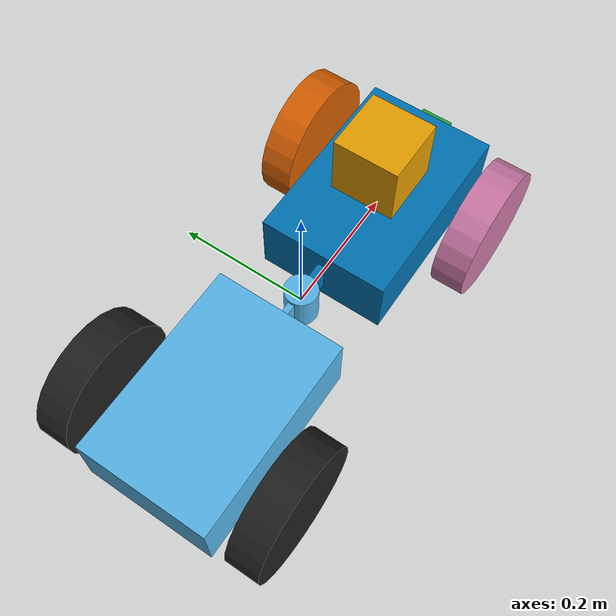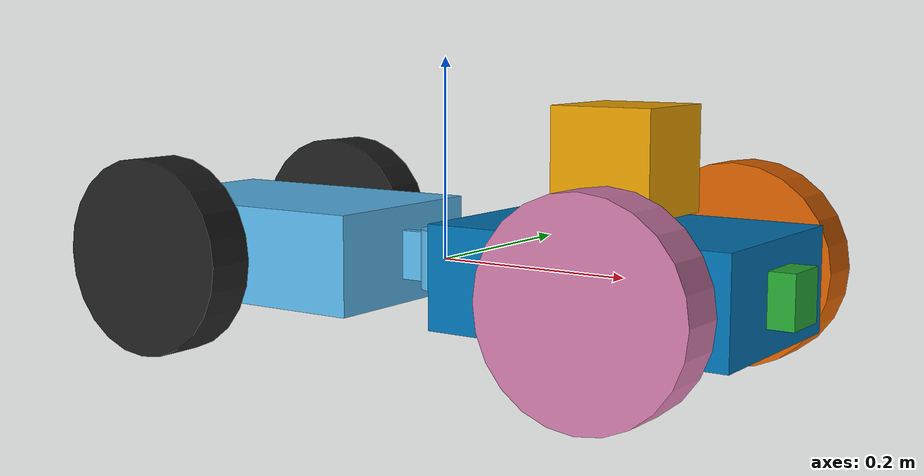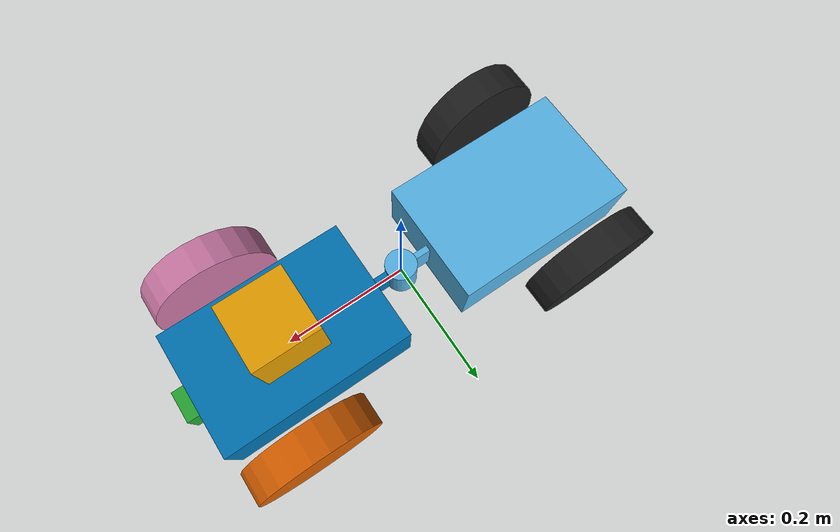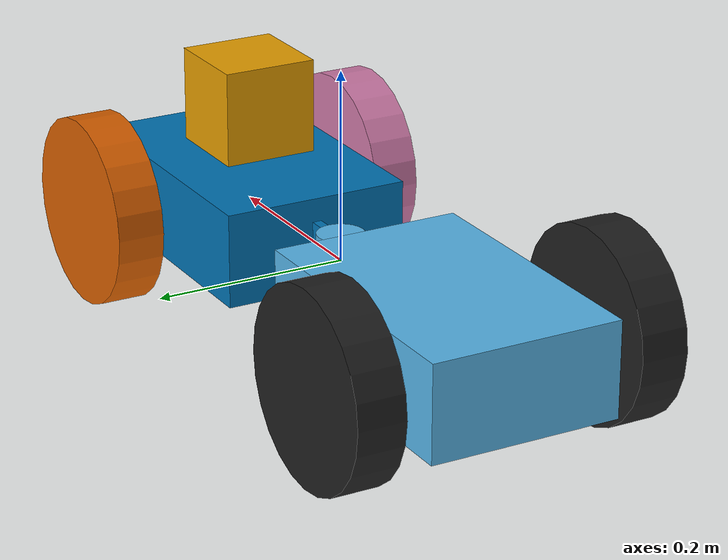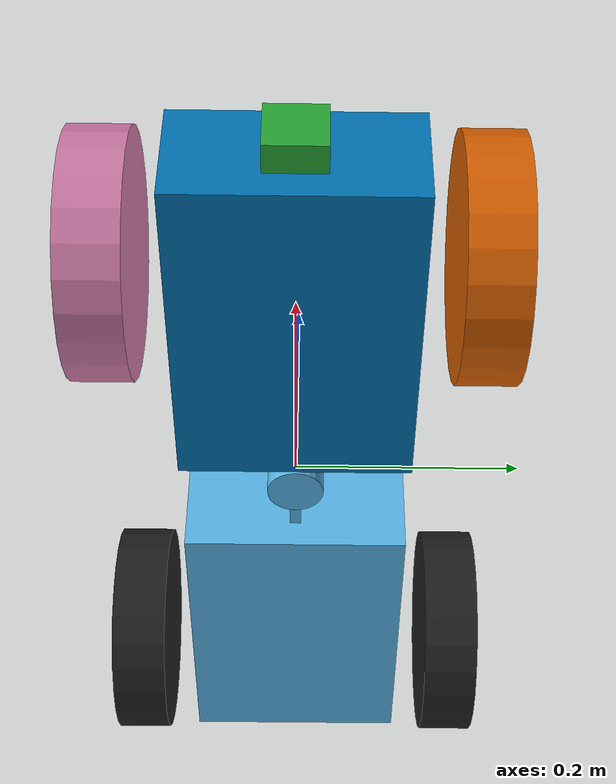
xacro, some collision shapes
<?xml version='1.0'?>

<robot name="udacity_bot" xmlns:xacro="http://www.ros.org/wiki/xacro">

  <xacro:include filename="$(find udacity_bot)/urdf/udacity_bot.gazebo" />

  <xacro:property name="wheel_length" value="0.05" />
  <xacro:property name="wheel_radius" value="0.1" />
  <xacro:property name="wheel_mass" value="5" />
  <xacro:property name="wheel_inertia" value="0.1" />

  <xacro:property name="chassis_width" value="0.2" />
  <xacro:property name="chassis_length" value="0.3" />
  <xacro:property name="chassis_depth" value="0.1" />
  <xacro:property name="chassis_mass" value="15" />
  <xacro:property name="chassis_inertia" value="0.1" />

  <xacro:property name="chassis_x_offset" value="${chassis_length/2 + 0.05}" />
  <xacro:property name="wheel_x_offset" value="${chassis_x_offset + chassis_length/2 - wheel_radius}" />
  <xacro:property name="wheel_y_offset" value="${(chassis_width + 0.1) / 2}" />

  <xacro:property name="steer_angle_limit" value="0.95" />
  <xacro:property name="steer_velocity" value="1" />

  <link name="robot_footprint"></link>

  <joint name="robot_footprint_joint" type="fixed">
    <origin xyz="0 0 0" rpy="0 0 0" />
    <parent link="robot_footprint"/>
    <child link="back_chassis" />
  </joint>

  <!-- back chassis -->
  <link name='back_chassis'>
    <inertial>
      <mass value="${chassis_mass}"/>
      <origin xyz="-${chassis_x_offset} 0 0" rpy=" 0 0 0"/>
      <inertia
          ixx="${chassis_inertia}" ixy="0" ixz="0"
          iyy="${chassis_inertia}" iyz="0"
          izz="${chassis_inertia}" />
    </inertial>
    <collision name='collision'>
      <origin xyz="-${chassis_x_offset} 0 0" rpy=" 0 0 0"/>
      <geometry>
        <box size="${chassis_length} ${chassis_width} ${chassis_depth}"/>
      </geometry>
    </collision>
    <visual name='chassis_visual'>
      <origin xyz="-${chassis_x_offset} 0 0" rpy=" 0 0 0"/>
      <geometry>
        <box size="${chassis_length} ${chassis_width} ${chassis_depth}"/>
      </geometry>
    </visual>
    <visual name='back_chassis_link_visual'>
      <origin xyz="-0.025 0 0" rpy=" 0 0 0"/>
      <geometry>
        <box size=".05 .01 .05"/>
      </geometry>
    </visual>
    <visual name='chassis_pin_visual'>
      <origin xyz="0 0 0" rpy=" 0 0 0"/>
      <geometry>
        <cylinder length="0.06" radius="0.025"/>
      </geometry>
    </visual>
  </link>

  <link name="left_wheel">
    <inertial>
      <mass value="${wheel_mass}"/>
      <origin xyz="0 0 0" rpy=" 0 1.5707 1.5707"/>
      <inertia
          ixx="${wheel_inertia}" ixy="0" ixz="0"
          iyy="${wheel_inertia}" iyz="0"
          izz="${wheel_inertia}" />
    </inertial>
    <collision name="left_wheel_collision">
      <origin xyz="0 0 0" rpy=" 0 1.5707 1.5707"/>
      <geometry>
        <cylinder length="${wheel_length}" radius="${wheel_radius}"/>
      </geometry>
    </collision>
    <visual name="left_wheel_visual">
      <origin xyz="0 0 0" rpy=" 0 1.5707 1.5707"/>
      <geometry>
        <cylinder length="${wheel_length}" radius="${wheel_radius}"/>
      </geometry>
    </visual>
  </link>
  <joint type="continuous" name="left_wheel_hinge">
    <origin xyz="-${wheel_x_offset}  ${wheel_y_offset} 0" rpy="0 0 0"/>
    <child link="left_wheel"/>
    <parent link="back_chassis"/>
    <axis xyz="0 1 0" rpy="0 0 0"/>
    <limit effort="10000" velocity="1000"/>
    <joint_properties damping="1.0" friction="1.0"/>
  </joint>

  <link name="right_wheel">
    <inertial>
      <mass value="${wheel_mass}"/>
      <origin xyz="0.0 0 0" rpy=" 0 1.5707 1.5707"/>
      <inertia
          ixx="${wheel_inertia}" ixy="0" ixz="0"
          iyy="${wheel_inertia}" iyz="0"
          izz="${wheel_inertia}" />
    </inertial>
    <collision name="right_wheel_collision">
      <origin xyz="0 0 0" rpy=" 0 1.5707 1.5707"/>
      <geometry>
        <cylinder length="${wheel_length}" radius="${wheel_radius}"/>
      </geometry>
    </collision>
    <visual name="right_wheel_visual">
      <origin xyz="0 0 0" rpy=" 0 1.5707 1.5707"/>
      <geometry>
        <cylinder length="${wheel_length}" radius="${wheel_radius}"/>
      </geometry>
    </visual>
  </link>
  <joint type="continuous" name="right_wheel_hinge">
    <origin xyz="-${wheel_x_offset} -${wheel_y_offset} 0" rpy="0 0 0"/>
    <child link="right_wheel"/>
    <parent link="back_chassis"/>
    <axis xyz="0 1 0" rpy="0 0 0"/>
    <limit effort="10000" velocity="1000"/>
    <joint_properties damping="1.0" friction="1.0"/>
  </joint>

  <!-- front chassis -->
  <joint type="revolute" name="chassis_hinge">
    <origin xyz="0 0 0" rpy="0 0 0"/>
    <child link="front_chassis"/>
    <parent link="back_chassis"/>
    <axis xyz="0 0 1" rpy="0 0 0"/>
    <limit effort="10000" lower="-${steer_angle_limit}" upper="${steer_angle_limit}" velocity="${steer_velocity}"/>
    <joint_properties damping="1.0" friction="1.0"/>
  </joint>
  <link name='front_chassis'>
    <inertial>
      <mass value="${chassis_mass}"/>
      <origin xyz="${chassis_x_offset} 0 0" rpy=" 0 0 0"/>
      <inertia
          ixx="${chassis_inertia}" ixy="0" ixz="0"
          iyy="${chassis_inertia}" iyz="0"
          izz="${chassis_inertia}" />
    </inertial>
    <collision name='collision'>
      <origin xyz="${chassis_x_offset} 0 0" rpy=" 0 0 0"/>
      <geometry>
        <box size="${chassis_length} ${chassis_width} ${chassis_depth}"/>
      </geometry>
    </collision>
    <visual name='chassis_visual'>
      <origin xyz="${chassis_x_offset} 0 0" rpy=" 0 0 0"/>
      <geometry>
        <box size="${chassis_length} ${chassis_width} ${chassis_depth}"/>
      </geometry>
    </visual>
    <visual name='front_chassis_link_visual'>
      <origin xyz="0.025 0 0" rpy=" 0 0 0"/>
      <geometry>
        <box size=".05 .01 .05"/>
      </geometry>
    </visual>
  </link>

  <link name="left_front_wheel">
    <inertial>
      <mass value="${wheel_mass}"/>
      <origin xyz="0.0 0 0" rpy=" 0 1.5707 1.5707"/>
      <inertia
          ixx="${wheel_inertia}" ixy="0" ixz="0"
          iyy="${wheel_inertia}" iyz="0"
          izz="${wheel_inertia}" />
    </inertial>
    <collision name="collision">
      <origin xyz="0 0 0" rpy=" 0 1.5707 1.5707"/>
      <geometry>
        <cylinder length="${wheel_length}" radius="${wheel_radius}"/>
      </geometry>
    </collision>
    <visual name="visual">
      <origin xyz="0 0 0" rpy=" 0 1.5707 1.5707"/>
      <geometry>
        <cylinder length="${wheel_length}" radius="${wheel_radius}"/>
      </geometry>
    </visual>
  </link>
  <joint type="continuous" name="left_front_wheel_hinge">
    <origin xyz="${wheel_x_offset} ${wheel_y_offset} 0" rpy="0 0 0"/>
    <child link="left_front_wheel"/>
    <parent link="front_chassis"/>
    <axis xyz="0 1 0" rpy="0 0 0"/>
    <limit effort="10000" velocity="1000"/>
    <joint_properties damping="1.0" friction="1.0"/>
  </joint>

  <link name="right_front_wheel">
    <inertial>
      <mass value="${wheel_mass}"/>
      <origin xyz="0.0 0 0" rpy=" 0 1.5707 1.5707"/>
      <inertia
          ixx="${wheel_inertia}" ixy="0" ixz="0"
          iyy="${wheel_inertia}" iyz="0"
          izz="${wheel_inertia}" />
    </inertial>
    <collision name="collision">
      <origin xyz="0 0 0" rpy=" 0 1.5707 1.5707"/>
      <geometry>
        <cylinder length="${wheel_length}" radius="${wheel_radius}"/>
      </geometry>
    </collision>
    <visual name="visual">
      <origin xyz="0 0 0" rpy=" 0 1.5707 1.5707"/>
      <geometry>
        <cylinder length="${wheel_length}" radius="${wheel_radius}"/>
      </geometry>
    </visual>
  </link>
  <joint type="continuous" name="right_front_wheel_hinge">
    <origin xyz="${wheel_x_offset} -${wheel_y_offset} 0" rpy="0 0 0"/>
    <child link="right_front_wheel"/>
    <parent link="front_chassis"/>
    <axis xyz="0 1 0" rpy="0 0 0"/>
    <limit effort="10000" velocity="1000"/>
    <joint_properties damping="1.0" friction="1.0"/>
  </joint>

  <!-- camera -->
  <link name='camera'>
    <inertial>
      <mass value="0.1"/>
      <origin xyz="0.0 0 0" rpy=" 0 0 0"/>
      <inertia
          ixx="1e-6" ixy="0" ixz="0"
          iyy="1e-6" iyz="0"
          izz="1e-6"/>
    </inertial>
    <collision name='camera_collision'>
      <origin xyz="0 0 0" rpy=" 0 0 0"/>
      <geometry>
        <box size=".05 .05 .05"/>
      </geometry>
    </collision>
    <visual name='camera_visual'>
      <origin xyz="0 0 0" rpy=" 0 0 0"/>
      <geometry>
        <box size=".05 .05 .05"/>
      </geometry>
    </visual>
  </link>
  <joint type="fixed" name="camera_joint">
    <origin xyz="${chassis_x_offset + chassis_length/2} 0 0" rpy="0 0 0"/>
    <child link="camera"/>
    <parent link="front_chassis"/>
    <axis xyz="0 1 0" rpy="0 0 0"/>
    <limit effort="10000" velocity="1000"/>
    <joint_properties damping="1.0" friction="1.0"/>
  </joint>

  <!-- laser -->
  <link name='hokuyo'>
    <inertial>
      <mass value="0.1"/>
      <origin xyz="0 0 0" rpy=" 0 0 0"/>
      <inertia
          ixx="1e-6" ixy="0" ixz="0"
          iyy="1e-6" iyz="0"
          izz="1e-6" />
    </inertial>
    <collision name='hokuyo_collision'>
      <origin xyz="0 0 0" rpy=" 0 0 0"/>
      <geometry>
        <box size=".1 .1 .1"/>
      </geometry>
    </collision>
    <visual name='hokuyo_visual'>
      <origin xyz="0 0 0" rpy=" 0 0 0"/>
      <geometry>
        <mesh filename="package://udacity_bot/meshes/hokuyo.dae"/>
      </geometry>
    </visual>
  </link>
  <joint type="fixed" name="hokuyo_joint">
    <origin xyz="${chassis_x_offset} 0 ${wheel_radius + 0.01}" rpy="0 0 0"/>
    <child link="hokuyo"/>
    <parent link="front_chassis"/>
    <axis xyz="0 1 0" rpy="0 0 0"/>
    <limit effort="10000" velocity="1000"/>
    <joint_properties damping="1.0" friction="1.0"/>
  </joint>

</robot>
